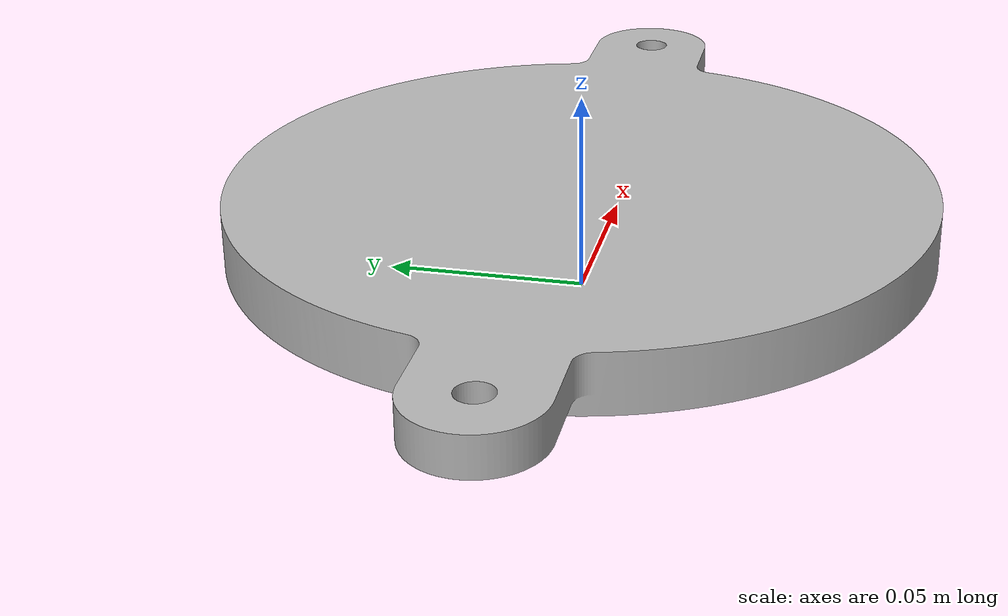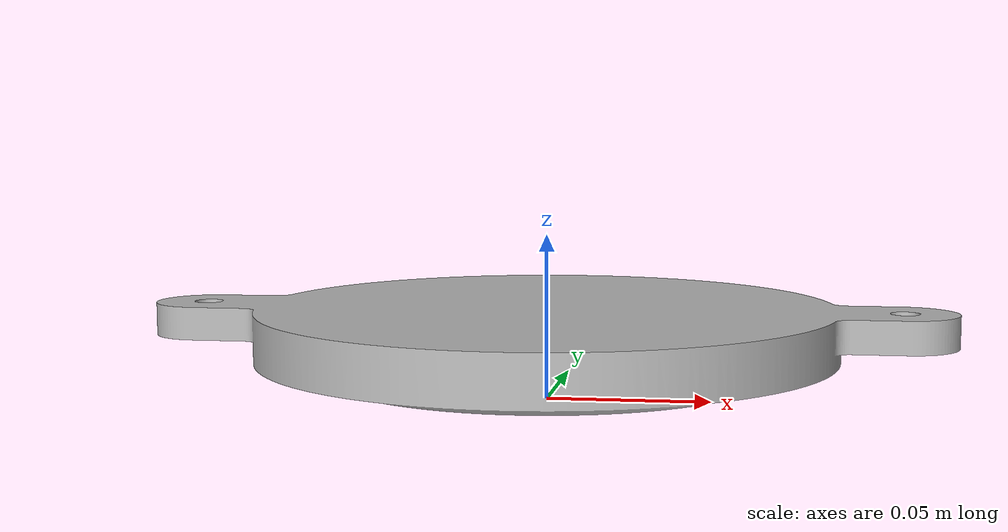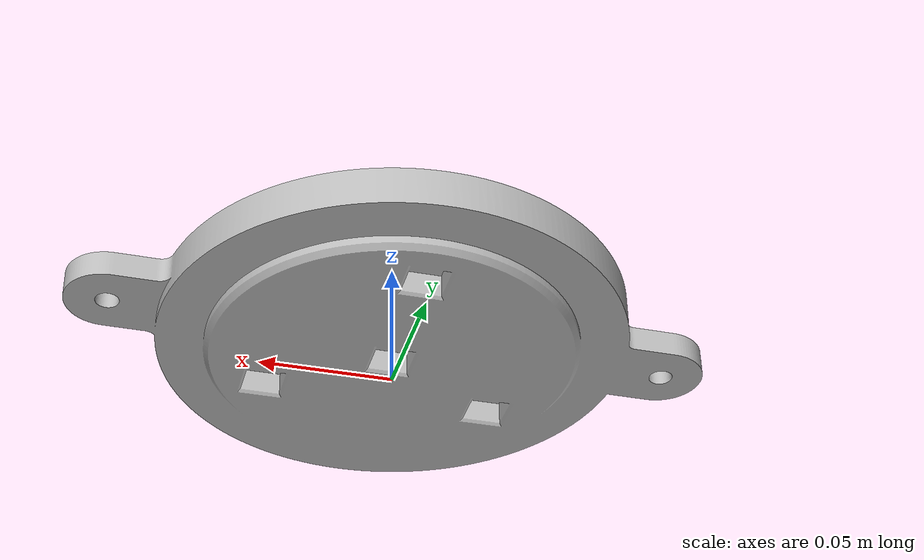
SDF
<?xml version="1.0" ?>
<sdf version="1.4">
    <model name="challenge_base">
    <static>true</static>
    <link name="link">
        <pose>0 0 0 0 0 0</pose>
        <collision name="collision">
            <geometry>
                <mesh>
                    <uri>model://challenge_base/mesh/challenge_base.stl</uri>
                    <scale>0.001 0.001 0.001</scale>
                </mesh>
            </geometry>
        </collision>
        <visual name="visual">
            <geometry>
                <mesh>
                    <uri>model://challenge_base/mesh/challenge_base.stl</uri>
                    <scale>0.001 0.001 0.001</scale>
                </mesh>
            </geometry>
        </visual>
        </link>
    </model>
</sdf>
